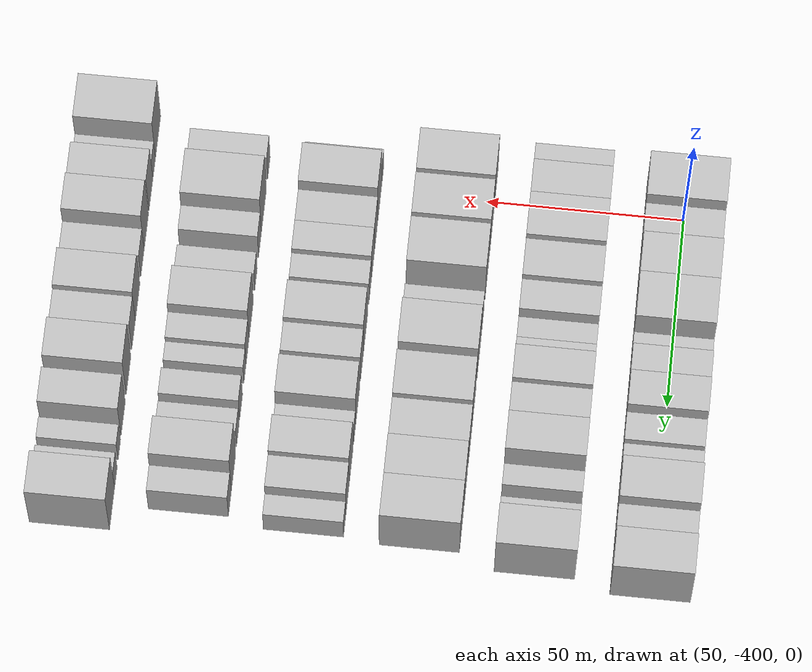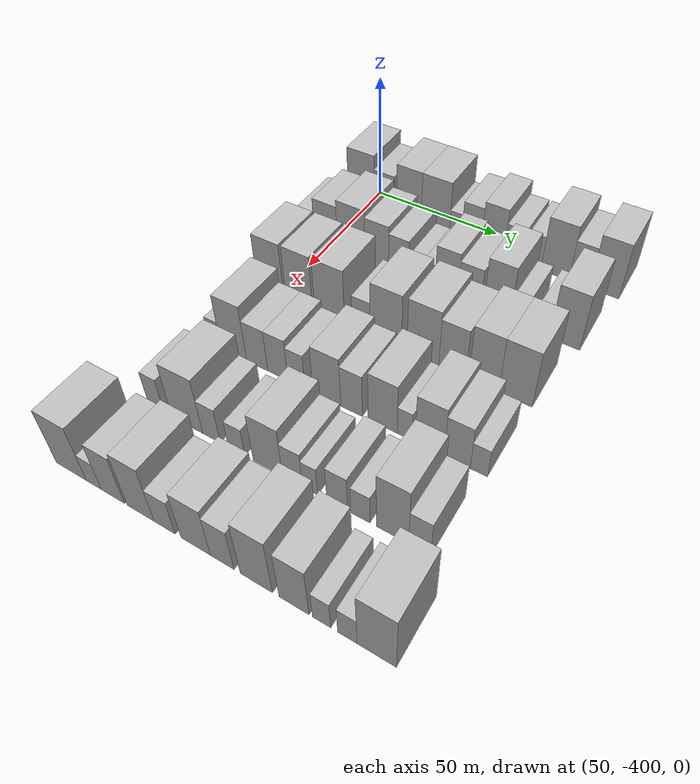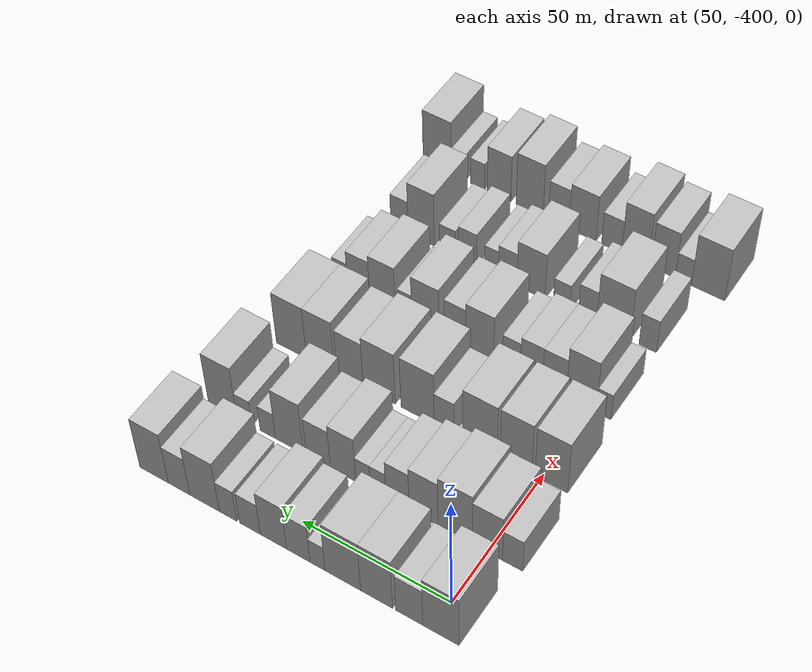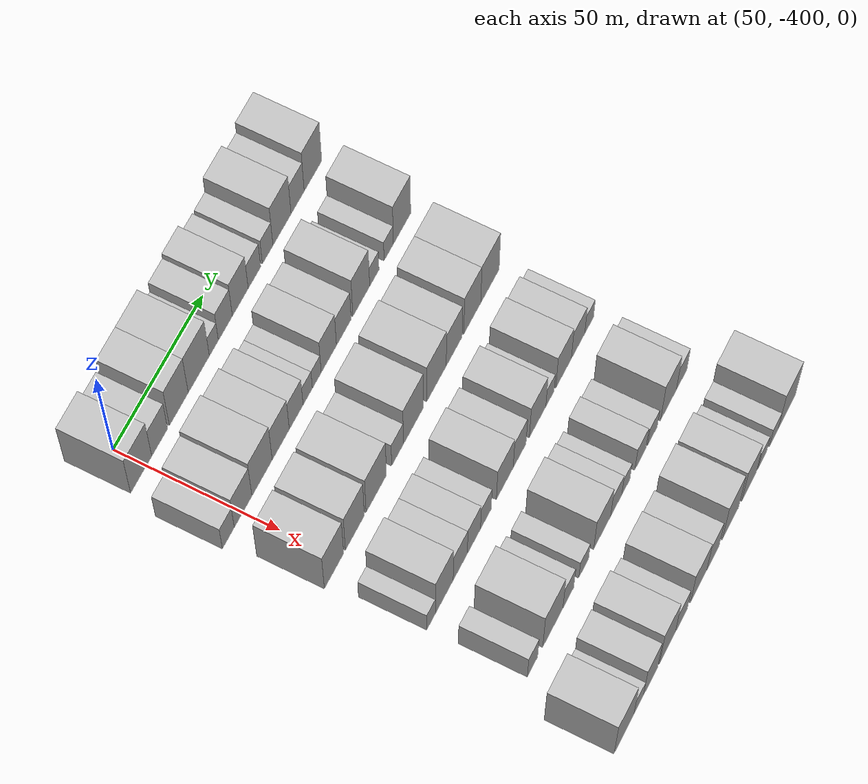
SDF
<sdf version="1.6">
 <world name="default">
  <model name="building_12">
   <static>1</static>
   <pose>50.0000 -402.8266 0 0.000000 0.000000 0.000000</pose>
   <link name="link">
    <pose>0 0 12.00 0 0 0</pose>
    <collision name="collision"><geometry><box><size>20.0000 11.6821 24.0000</size></box></geometry></collision>
    <visual name="visual">
     <cast_shadows>0</cast_shadows>
     <geometry><box><size>20.0000 11.6821 24.0000</size></box></geometry>
     <material>
      <script>
       <uri>model://HANNAS_wall/materials/scripts</uri>
       <uri>model://HANNAS_wall/materials/textures</uri>
       <name>vrc/HANNAS_wall</name>
      </script>
     </material>
    </visual>
   </link>
  </model>
  <model name="building_13">
   <static>1</static>
   <pose>50.0000 -392.5859 0 0.000000 0.000000 0.000000</pose>
   <link name="link">
    <pose>0 0 9.00 0 0 0</pose>
    <collision name="collision"><geometry><box><size>20.0000 8.7992 18.0000</size></box></geometry></collision>
    <visual name="visual">
     <cast_shadows>0</cast_shadows>
     <geometry><box><size>20.0000 8.7992 18.0000</size></box></geometry>
     <material>
      <script>
       <uri>model://HANNAS_wall/materials/scripts</uri>
       <uri>model://HANNAS_wall/materials/textures</uri>
       <name>vrc/HANNAS_wall</name>
      </script>
     </material>
    </visual>
   </link>
  </model>
  <model name="building_14">
   <static>1</static>
   <pose>50.0000 -381.9182 0 0.000000 0.000000 0.000000</pose>
   <link name="link">
    <pose>0 0 12.00 0 0 0</pose>
    <collision name="collision"><geometry><box><size>20.0000 10.5363 24.0000</size></box></geometry></collision>
    <visual name="visual">
     <cast_shadows>0</cast_shadows>
     <geometry><box><size>20.0000 10.5363 24.0000</size></box></geometry>
     <material>
      <script>
       <uri>model://HANNAS_wall/materials/scripts</uri>
       <uri>model://HANNAS_wall/materials/textures</uri>
       <name>vrc/HANNAS_wall</name>
      </script>
     </material>
    </visual>
   </link>
  </model>
  <model name="building_15">
   <static>1</static>
   <pose>50.0000 -370.6933 0 0.000000 0.000000 0.000000</pose>
   <link name="link">
    <pose>0 0 12.00 0 0 0</pose>
    <collision name="collision"><geometry><box><size>20.0000 11.9134 24.0000</size></box></geometry></collision>
    <visual name="visual">
     <cast_shadows>0</cast_shadows>
     <geometry><box><size>20.0000 11.9134 24.0000</size></box></geometry>
     <material>
      <script>
       <uri>model://HANNAS_wall/materials/scripts</uri>
       <uri>model://HANNAS_wall/materials/textures</uri>
       <name>vrc/HANNAS_wall</name>
      </script>
     </material>
    </visual>
   </link>
  </model>
  <model name="building_16">
   <static>1</static>
   <pose>50.0000 -362.1890 0 0.000000 0.000000 0.000000</pose>
   <link name="link">
    <pose>0 0 6.00 0 0 0</pose>
    <collision name="collision"><geometry><box><size>20.0000 5.0953 12.0000</size></box></geometry></collision>
    <visual name="visual">
     <cast_shadows>0</cast_shadows>
     <geometry><box><size>20.0000 5.0953 12.0000</size></box></geometry>
     <material>
      <script>
       <uri>model://HANNAS_wall/materials/scripts</uri>
       <uri>model://HANNAS_wall/materials/textures</uri>
       <name>vrc/HANNAS_wall</name>
      </script>
     </material>
    </visual>
   </link>
  </model>
  <model name="building_17">
   <static>1</static>
   <pose>50.0000 -355.6425 0 0.000000 0.000000 0.000000</pose>
   <link name="link">
    <pose>0 0 9.00 0 0 0</pose>
    <collision name="collision"><geometry><box><size>20.0000 7.9978 18.0000</size></box></geometry></collision>
    <visual name="visual">
     <cast_shadows>0</cast_shadows>
     <geometry><box><size>20.0000 7.9978 18.0000</size></box></geometry>
     <material>
      <script>
       <uri>model://HANNAS_wall/materials/scripts</uri>
       <uri>model://HANNAS_wall/materials/textures</uri>
       <name>vrc/HANNAS_wall</name>
      </script>
     </material>
    </visual>
   </link>
  </model>
  <model name="building_18">
   <static>1</static>
   <pose>50.0000 -347.1063 0 0.000000 0.000000 0.000000</pose>
   <link name="link">
    <pose>0 0 10.50 0 0 0</pose>
    <collision name="collision"><geometry><box><size>20.0000 9.0746 21.0000</size></box></geometry></collision>
    <visual name="visual">
     <cast_shadows>0</cast_shadows>
     <geometry><box><size>20.0000 9.0746 21.0000</size></box></geometry>
     <material>
      <script>
       <uri>model://HANNAS_wall/materials/scripts</uri>
       <uri>model://HANNAS_wall/materials/textures</uri>
       <name>vrc/HANNAS_wall</name>
      </script>
     </material>
    </visual>
   </link>
  </model>
  <model name="building_19">
   <static>1</static>
   <pose>50.0000 -338.9783 0 0.000000 0.000000 0.000000</pose>
   <link name="link">
    <pose>0 0 7.50 0 0 0</pose>
    <collision name="collision"><geometry><box><size>20.0000 7.1814 15.0000</size></box></geometry></collision>
    <visual name="visual">
     <cast_shadows>0</cast_shadows>
     <geometry><box><size>20.0000 7.1814 15.0000</size></box></geometry>
     <material>
      <script>
       <uri>model://HANNAS_wall/materials/scripts</uri>
       <uri>model://HANNAS_wall/materials/textures</uri>
       <name>vrc/HANNAS_wall</name>
      </script>
     </material>
    </visual>
   </link>
  </model>
  <model name="building_20">
   <static>1</static>
   <pose>50.0000 -331.3284 0 0.000000 0.000000 0.000000</pose>
   <link name="link">
    <pose>0 0 7.50 0 0 0</pose>
    <collision name="collision"><geometry><box><size>20.0000 6.1185 15.0000</size></box></geometry></collision>
    <visual name="visual">
     <cast_shadows>0</cast_shadows>
     <geometry><box><size>20.0000 6.1185 15.0000</size></box></geometry>
     <material>
      <script>
       <uri>model://HANNAS_wall/materials/scripts</uri>
       <uri>model://HANNAS_wall/materials/textures</uri>
       <name>vrc/HANNAS_wall</name>
      </script>
     </material>
    </visual>
   </link>
  </model>
  <model name="building_21">
   <static>1</static>
   <pose>50.0000 -322.9980 0 0.000000 0.000000 0.000000</pose>
   <link name="link">
    <pose>0 0 12.00 0 0 0</pose>
    <collision name="collision"><geometry><box><size>20.0000 10.5423 24.0000</size></box></geometry></collision>
    <visual name="visual">
     <cast_shadows>0</cast_shadows>
     <geometry><box><size>20.0000 10.5423 24.0000</size></box></geometry>
     <material>
      <script>
       <uri>model://HANNAS_wall/materials/scripts</uri>
       <uri>model://HANNAS_wall/materials/textures</uri>
       <name>vrc/HANNAS_wall</name>
      </script>
     </material>
    </visual>
   </link>
  </model>
  <model name="building_22">
   <static>1</static>
   <pose>50.0000 -313.8811 0 0.000000 0.000000 0.000000</pose>
   <link name="link">
    <pose>0 0 9.00 0 0 0</pose>
    <collision name="collision"><geometry><box><size>20.0000 7.6914 18.0000</size></box></geometry></collision>
    <visual name="visual">
     <cast_shadows>0</cast_shadows>
     <geometry><box><size>20.0000 7.6914 18.0000</size></box></geometry>
     <material>
      <script>
       <uri>model://HANNAS_wall/materials/scripts</uri>
       <uri>model://HANNAS_wall/materials/textures</uri>
       <name>vrc/HANNAS_wall</name>
      </script>
     </material>
    </visual>
   </link>
  </model>
  <model name="building_23">
   <static>1</static>
   <pose>50.0000 -304.8590 0 0.000000 0.000000 0.000000</pose>
   <link name="link">
    <pose>0 0 12.00 0 0 0</pose>
    <collision name="collision"><geometry><box><size>20.0000 10.3528 24.0000</size></box></geometry></collision>
    <visual name="visual">
     <cast_shadows>0</cast_shadows>
     <geometry><box><size>20.0000 10.3528 24.0000</size></box></geometry>
     <material>
      <script>
       <uri>model://HANNAS_wall/materials/scripts</uri>
       <uri>model://HANNAS_wall/materials/textures</uri>
       <name>vrc/HANNAS_wall</name>
      </script>
     </material>
    </visual>
   </link>
  </model>
  <model name="building_131">
   <static>1</static>
   <pose>79.0000 -408.0820 0 0.000000 0.000000 0.000000</pose>
   <link name="link">
    <pose>0 0 7.50 0 0 0</pose>
    <collision name="collision"><geometry><box><size>20.0000 6.6224 15.0000</size></box></geometry></collision>
    <visual name="visual">
     <cast_shadows>0</cast_shadows>
     <geometry><box><size>20.0000 6.6224 15.0000</size></box></geometry>
     <material>
      <script>
       <uri>model://HANNAS_wall/materials/scripts</uri>
       <uri>model://HANNAS_wall/materials/textures</uri>
       <name>vrc/HANNAS_wall</name>
      </script>
     </material>
    </visual>
   </link>
  </model>
  <model name="building_132">
   <static>1</static>
   <pose>79.0000 -399.8307 0 0.000000 0.000000 0.000000</pose>
   <link name="link">
    <pose>0 0 10.50 0 0 0</pose>
    <collision name="collision"><geometry><box><size>20.0000 9.8802 21.0000</size></box></geometry></collision>
    <visual name="visual">
     <cast_shadows>0</cast_shadows>
     <geometry><box><size>20.0000 9.8802 21.0000</size></box></geometry>
     <material>
      <script>
       <uri>model://HANNAS_wall/materials/scripts</uri>
       <uri>model://HANNAS_wall/materials/textures</uri>
       <name>vrc/HANNAS_wall</name>
      </script>
     </material>
    </visual>
   </link>
  </model>
  <model name="building_133">
   <static>1</static>
   <pose>79.0000 -389.1567 0 0.000000 0.000000 0.000000</pose>
   <link name="link">
    <pose>0 0 12.00 0 0 0</pose>
    <collision name="collision"><geometry><box><size>20.0000 11.4678 24.0000</size></box></geometry></collision>
    <visual name="visual">
     <cast_shadows>0</cast_shadows>
     <geometry><box><size>20.0000 11.4678 24.0000</size></box></geometry>
     <material>
      <script>
       <uri>model://HANNAS_wall/materials/scripts</uri>
       <uri>model://HANNAS_wall/materials/textures</uri>
       <name>vrc/HANNAS_wall</name>
      </script>
     </material>
    </visual>
   </link>
  </model>
  <model name="building_134">
   <static>1</static>
   <pose>79.0000 -378.5693 0 0.000000 0.000000 0.000000</pose>
   <link name="link">
    <pose>0 0 10.50 0 0 0</pose>
    <collision name="collision"><geometry><box><size>20.0000 9.7071 21.0000</size></box></geometry></collision>
    <visual name="visual">
     <cast_shadows>0</cast_shadows>
     <geometry><box><size>20.0000 9.7071 21.0000</size></box></geometry>
     <material>
      <script>
       <uri>model://HANNAS_wall/materials/scripts</uri>
       <uri>model://HANNAS_wall/materials/textures</uri>
       <name>vrc/HANNAS_wall</name>
      </script>
     </material>
    </visual>
   </link>
  </model>
  <model name="building_135">
   <static>1</static>
   <pose>79.0000 -369.7745 0 0.000000 0.000000 0.000000</pose>
   <link name="link">
    <pose>0 0 9.00 0 0 0</pose>
    <collision name="collision"><geometry><box><size>20.0000 7.8825 18.0000</size></box></geometry></collision>
    <visual name="visual">
     <cast_shadows>0</cast_shadows>
     <geometry><box><size>20.0000 7.8825 18.0000</size></box></geometry>
     <material>
      <script>
       <uri>model://HANNAS_wall/materials/scripts</uri>
       <uri>model://HANNAS_wall/materials/textures</uri>
       <name>vrc/HANNAS_wall</name>
      </script>
     </material>
    </visual>
   </link>
  </model>
  <model name="building_136">
   <static>1</static>
   <pose>79.0000 -363.1737 0 0.000000 0.000000 0.000000</pose>
   <link name="link">
    <pose>0 0 6.00 0 0 0</pose>
    <collision name="collision"><geometry><box><size>20.0000 5.3191 12.0000</size></box></geometry></collision>
    <visual name="visual">
     <cast_shadows>0</cast_shadows>
     <geometry><box><size>20.0000 5.3191 12.0000</size></box></geometry>
     <material>
      <script>
       <uri>model://HANNAS_wall/materials/scripts</uri>
       <uri>model://HANNAS_wall/materials/textures</uri>
       <name>vrc/HANNAS_wall</name>
      </script>
     </material>
    </visual>
   </link>
  </model>
  <model name="building_137">
   <static>1</static>
   <pose>79.0000 -357.9667 0 0.000000 0.000000 0.000000</pose>
   <link name="link">
    <pose>0 0 6.00 0 0 0</pose>
    <collision name="collision"><geometry><box><size>20.0000 5.0949 12.0000</size></box></geometry></collision>
    <visual name="visual">
     <cast_shadows>0</cast_shadows>
     <geometry><box><size>20.0000 5.0949 12.0000</size></box></geometry>
     <material>
      <script>
       <uri>model://HANNAS_wall/materials/scripts</uri>
       <uri>model://HANNAS_wall/materials/textures</uri>
       <name>vrc/HANNAS_wall</name>
      </script>
     </material>
    </visual>
   </link>
  </model>
  <model name="building_138">
   <static>1</static>
   <pose>79.0000 -350.9914 0 0.000000 0.000000 0.000000</pose>
   <link name="link">
    <pose>0 0 10.50 0 0 0</pose>
    <collision name="collision"><geometry><box><size>20.0000 8.8556 21.0000</size></box></geometry></collision>
    <visual name="visual">
     <cast_shadows>0</cast_shadows>
     <geometry><box><size>20.0000 8.8556 21.0000</size></box></geometry>
     <material>
      <script>
       <uri>model://HANNAS_wall/materials/scripts</uri>
       <uri>model://HANNAS_wall/materials/textures</uri>
       <name>vrc/HANNAS_wall</name>
      </script>
     </material>
    </visual>
   </link>
  </model>
  <model name="building_139">
   <static>1</static>
   <pose>79.0000 -342.2838 0 0.000000 0.000000 0.000000</pose>
   <link name="link">
    <pose>0 0 9.00 0 0 0</pose>
    <collision name="collision"><geometry><box><size>20.0000 8.5595 18.0000</size></box></geometry></collision>
    <visual name="visual">
     <cast_shadows>0</cast_shadows>
     <geometry><box><size>20.0000 8.5595 18.0000</size></box></geometry>
     <material>
      <script>
       <uri>model://HANNAS_wall/materials/scripts</uri>
       <uri>model://HANNAS_wall/materials/textures</uri>
       <name>vrc/HANNAS_wall</name>
      </script>
     </material>
    </visual>
   </link>
  </model>
  <model name="building_140">
   <static>1</static>
   <pose>79.0000 -332.0629 0 0.000000 0.000000 0.000000</pose>
   <link name="link">
    <pose>0 0 12.00 0 0 0</pose>
    <collision name="collision"><geometry><box><size>20.0000 9.8823 24.0000</size></box></geometry></collision>
    <visual name="visual">
     <cast_shadows>0</cast_shadows>
     <geometry><box><size>20.0000 9.8823 24.0000</size></box></geometry>
     <material>
      <script>
       <uri>model://HANNAS_wall/materials/scripts</uri>
       <uri>model://HANNAS_wall/materials/textures</uri>
       <name>vrc/HANNAS_wall</name>
      </script>
     </material>
    </visual>
   </link>
  </model>
  <model name="building_141">
   <static>1</static>
   <pose>79.0000 -324.3606 0 0.000000 0.000000 0.000000</pose>
   <link name="link">
    <pose>0 0 6.00 0 0 0</pose>
    <collision name="collision"><geometry><box><size>20.0000 5.5224 12.0000</size></box></geometry></collision>
    <visual name="visual">
     <cast_shadows>0</cast_shadows>
     <geometry><box><size>20.0000 5.5224 12.0000</size></box></geometry>
     <material>
      <script>
       <uri>model://HANNAS_wall/materials/scripts</uri>
       <uri>model://HANNAS_wall/materials/textures</uri>
       <name>vrc/HANNAS_wall</name>
      </script>
     </material>
    </visual>
   </link>
  </model>
  <model name="building_142">
   <static>1</static>
   <pose>79.0000 -315.8337 0 0.000000 0.000000 0.000000</pose>
   <link name="link">
    <pose>0 0 6.00 0 0 0</pose>
    <collision name="collision"><geometry><box><size>20.0000 5.5313 12.0000</size></box></geometry></collision>
    <visual name="visual">
     <cast_shadows>0</cast_shadows>
     <geometry><box><size>20.0000 5.5313 12.0000</size></box></geometry>
     <material>
      <script>
       <uri>model://HANNAS_wall/materials/scripts</uri>
       <uri>model://HANNAS_wall/materials/textures</uri>
       <name>vrc/HANNAS_wall</name>
      </script>
     </material>
    </visual>
   </link>
  </model>
  <model name="building_143">
   <static>1</static>
   <pose>79.0000 -307.8991 0 0.000000 0.000000 0.000000</pose>
   <link name="link">
    <pose>0 0 12.00 0 0 0</pose>
    <collision name="collision"><geometry><box><size>20.0000 10.3379 24.0000</size></box></geometry></collision>
    <visual name="visual">
     <cast_shadows>0</cast_shadows>
     <geometry><box><size>20.0000 10.3379 24.0000</size></box></geometry>
     <material>
      <script>
       <uri>model://HANNAS_wall/materials/scripts</uri>
       <uri>model://HANNAS_wall/materials/textures</uri>
       <name>vrc/HANNAS_wall</name>
      </script>
     </material>
    </visual>
   </link>
  </model>
  <model name="building_248">
   <static>1</static>
   <pose>108.0000 -403.5862 0 0.000000 0.000000 0.000000</pose>
   <link name="link">
    <pose>0 0 12.00 0 0 0</pose>
    <collision name="collision"><geometry><box><size>20.0000 10.9445 24.0000</size></box></geometry></collision>
    <visual name="visual">
     <cast_shadows>0</cast_shadows>
     <geometry><box><size>20.0000 10.9445 24.0000</size></box></geometry>
     <material>
      <script>
       <uri>model://HANNAS_wall/materials/scripts</uri>
       <uri>model://HANNAS_wall/materials/textures</uri>
       <name>vrc/HANNAS_wall</name>
      </script>
     </material>
    </visual>
   </link>
  </model>
  <model name="building_249">
   <static>1</static>
   <pose>108.0000 -391.7065 0 0.000000 0.000000 0.000000</pose>
   <link name="link">
    <pose>0 0 12.00 0 0 0</pose>
    <collision name="collision"><geometry><box><size>20.0000 10.8149 24.0000</size></box></geometry></collision>
    <visual name="visual">
     <cast_shadows>0</cast_shadows>
     <geometry><box><size>20.0000 10.8149 24.0000</size></box></geometry>
     <material>
      <script>
       <uri>model://HANNAS_wall/materials/scripts</uri>
       <uri>model://HANNAS_wall/materials/textures</uri>
       <name>vrc/HANNAS_wall</name>
      </script>
     </material>
    </visual>
   </link>
  </model>
  <model name="building_250">
   <static>1</static>
   <pose>108.0000 -379.4249 0 0.000000 0.000000 0.000000</pose>
   <link name="link">
    <pose>0 0 12.00 0 0 0</pose>
    <collision name="collision"><geometry><box><size>20.0000 11.7484 24.0000</size></box></geometry></collision>
    <visual name="visual">
     <cast_shadows>0</cast_shadows>
     <geometry><box><size>20.0000 11.7484 24.0000</size></box></geometry>
     <material>
      <script>
       <uri>model://HANNAS_wall/materials/scripts</uri>
       <uri>model://HANNAS_wall/materials/textures</uri>
       <name>vrc/HANNAS_wall</name>
      </script>
     </material>
    </visual>
   </link>
  </model>
  <model name="building_251">
   <static>1</static>
   <pose>108.0000 -367.1018 0 0.000000 0.000000 0.000000</pose>
   <link name="link">
    <pose>0 0 7.50 0 0 0</pose>
    <collision name="collision"><geometry><box><size>20.0000 6.8978 15.0000</size></box></geometry></collision>
    <visual name="visual">
     <cast_shadows>0</cast_shadows>
     <geometry><box><size>20.0000 6.8978 15.0000</size></box></geometry>
     <material>
      <script>
       <uri>model://HANNAS_wall/materials/scripts</uri>
       <uri>model://HANNAS_wall/materials/textures</uri>
       <name>vrc/HANNAS_wall</name>
      </script>
     </material>
    </visual>
   </link>
  </model>
  <model name="building_252">
   <static>1</static>
   <pose>108.0000 -357.8293 0 0.000000 0.000000 0.000000</pose>
   <link name="link">
    <pose>0 0 12.00 0 0 0</pose>
    <collision name="collision"><geometry><box><size>20.0000 11.6472 24.0000</size></box></geometry></collision>
    <visual name="visual">
     <cast_shadows>0</cast_shadows>
     <geometry><box><size>20.0000 11.6472 24.0000</size></box></geometry>
     <material>
      <script>
       <uri>model://HANNAS_wall/materials/scripts</uri>
       <uri>model://HANNAS_wall/materials/textures</uri>
       <name>vrc/HANNAS_wall</name>
      </script>
     </material>
    </visual>
   </link>
  </model>
  <model name="building_253">
   <static>1</static>
   <pose>108.0000 -344.2623 0 0.000000 0.000000 0.000000</pose>
   <link name="link">
    <pose>0 0 12.00 0 0 0</pose>
    <collision name="collision"><geometry><box><size>20.0000 11.4868 24.0000</size></box></geometry></collision>
    <visual name="visual">
     <cast_shadows>0</cast_shadows>
     <geometry><box><size>20.0000 11.4868 24.0000</size></box></geometry>
     <material>
      <script>
       <uri>model://HANNAS_wall/materials/scripts</uri>
       <uri>model://HANNAS_wall/materials/textures</uri>
       <name>vrc/HANNAS_wall</name>
      </script>
     </material>
    </visual>
   </link>
  </model>
  <model name="building_254">
   <static>1</static>
   <pose>108.0000 -333.7825 0 0.000000 0.000000 0.000000</pose>
   <link name="link">
    <pose>0 0 10.50 0 0 0</pose>
    <collision name="collision"><geometry><box><size>20.0000 9.4729 21.0000</size></box></geometry></collision>
    <visual name="visual">
     <cast_shadows>0</cast_shadows>
     <geometry><box><size>20.0000 9.4729 21.0000</size></box></geometry>
     <material>
      <script>
       <uri>model://HANNAS_wall/materials/scripts</uri>
       <uri>model://HANNAS_wall/materials/textures</uri>
       <name>vrc/HANNAS_wall</name>
      </script>
     </material>
    </visual>
   </link>
  </model>
  <model name="building_255">
   <static>1</static>
   <pose>108.0000 -322.9569 0 0.000000 0.000000 0.000000</pose>
   <link name="link">
    <pose>0 0 12.00 0 0 0</pose>
    <collision name="collision"><geometry><box><size>20.0000 10.1784 24.0000</size></box></geometry></collision>
    <visual name="visual">
     <cast_shadows>0</cast_shadows>
     <geometry><box><size>20.0000 10.1784 24.0000</size></box></geometry>
     <material>
      <script>
       <uri>model://HANNAS_wall/materials/scripts</uri>
       <uri>model://HANNAS_wall/materials/textures</uri>
       <name>vrc/HANNAS_wall</name>
      </script>
     </material>
    </visual>
   </link>
  </model>
  <model name="building_256">
   <static>1</static>
   <pose>108.0000 -312.3103 0 0.000000 0.000000 0.000000</pose>
   <link name="link">
    <pose>0 0 12.00 0 0 0</pose>
    <collision name="collision"><geometry><box><size>20.0000 11.1149 24.0000</size></box></geometry></collision>
    <visual name="visual">
     <cast_shadows>0</cast_shadows>
     <geometry><box><size>20.0000 11.1149 24.0000</size></box></geometry>
     <material>
      <script>
       <uri>model://HANNAS_wall/materials/scripts</uri>
       <uri>model://HANNAS_wall/materials/textures</uri>
       <name>vrc/HANNAS_wall</name>
      </script>
     </material>
    </visual>
   </link>
  </model>
  <model name="building_361">
   <static>1</static>
   <pose>137.0000 -404.5205 0 0.000000 0.000000 0.000000</pose>
   <link name="link">
    <pose>0 0 6.00 0 0 0</pose>
    <collision name="collision"><geometry><box><size>20.0000 4.9355 12.0000</size></box></geometry></collision>
    <visual name="visual">
     <cast_shadows>0</cast_shadows>
     <geometry><box><size>20.0000 4.9355 12.0000</size></box></geometry>
     <material>
      <script>
       <uri>model://HANNAS_wall/materials/scripts</uri>
       <uri>model://HANNAS_wall/materials/textures</uri>
       <name>vrc/HANNAS_wall</name>
      </script>
     </material>
    </visual>
   </link>
  </model>
  <model name="building_362">
   <static>1</static>
   <pose>137.0000 -396.9071 0 0.000000 0.000000 0.000000</pose>
   <link name="link">
    <pose>0 0 12.00 0 0 0</pose>
    <collision name="collision"><geometry><box><size>20.0000 10.2913 24.0000</size></box></geometry></collision>
    <visual name="visual">
     <cast_shadows>0</cast_shadows>
     <geometry><box><size>20.0000 10.2913 24.0000</size></box></geometry>
     <material>
      <script>
       <uri>model://HANNAS_wall/materials/scripts</uri>
       <uri>model://HANNAS_wall/materials/textures</uri>
       <name>vrc/HANNAS_wall</name>
      </script>
     </material>
    </visual>
   </link>
  </model>
  <model name="building_363">
   <static>1</static>
   <pose>137.0000 -387.6380 0 0.000000 0.000000 0.000000</pose>
   <link name="link">
    <pose>0 0 9.00 0 0 0</pose>
    <collision name="collision"><geometry><box><size>20.0000 8.2469 18.0000</size></box></geometry></collision>
    <visual name="visual">
     <cast_shadows>0</cast_shadows>
     <geometry><box><size>20.0000 8.2469 18.0000</size></box></geometry>
     <material>
      <script>
       <uri>model://HANNAS_wall/materials/scripts</uri>
       <uri>model://HANNAS_wall/materials/textures</uri>
       <name>vrc/HANNAS_wall</name>
      </script>
     </material>
    </visual>
   </link>
  </model>
  <model name="building_364">
   <static>1</static>
   <pose>137.0000 -379.6651 0 0.000000 0.000000 0.000000</pose>
   <link name="link">
    <pose>0 0 9.00 0 0 0</pose>
    <collision name="collision"><geometry><box><size>20.0000 7.6991 18.0000</size></box></geometry></collision>
    <visual name="visual">
     <cast_shadows>0</cast_shadows>
     <geometry><box><size>20.0000 7.6991 18.0000</size></box></geometry>
     <material>
      <script>
       <uri>model://HANNAS_wall/materials/scripts</uri>
       <uri>model://HANNAS_wall/materials/textures</uri>
       <name>vrc/HANNAS_wall</name>
      </script>
     </material>
    </visual>
   </link>
  </model>
  <model name="building_365">
   <static>1</static>
   <pose>137.0000 -372.6379 0 0.000000 0.000000 0.000000</pose>
   <link name="link">
    <pose>0 0 7.50 0 0 0</pose>
    <collision name="collision"><geometry><box><size>20.0000 6.3553 15.0000</size></box></geometry></collision>
    <visual name="visual">
     <cast_shadows>0</cast_shadows>
     <geometry><box><size>20.0000 6.3553 15.0000</size></box></geometry>
     <material>
      <script>
       <uri>model://HANNAS_wall/materials/scripts</uri>
       <uri>model://HANNAS_wall/materials/textures</uri>
       <name>vrc/HANNAS_wall</name>
      </script>
     </material>
    </visual>
   </link>
  </model>
  <model name="building_366">
   <static>1</static>
   <pose>137.0000 -361.4677 0 0.000000 0.000000 0.000000</pose>
   <link name="link">
    <pose>0 0 10.50 0 0 0</pose>
    <collision name="collision"><geometry><box><size>20.0000 9.9851 21.0000</size></box></geometry></collision>
    <visual name="visual">
     <cast_shadows>0</cast_shadows>
     <geometry><box><size>20.0000 9.9851 21.0000</size></box></geometry>
     <material>
      <script>
       <uri>model://HANNAS_wall/materials/scripts</uri>
       <uri>model://HANNAS_wall/materials/textures</uri>
       <name>vrc/HANNAS_wall</name>
      </script>
     </material>
    </visual>
   </link>
  </model>
  <model name="building_367">
   <static>1</static>
   <pose>137.0000 -352.6650 0 0.000000 0.000000 0.000000</pose>
   <link name="link">
    <pose>0 0 9.00 0 0 0</pose>
    <collision name="collision"><geometry><box><size>20.0000 7.6202 18.0000</size></box></geometry></collision>
    <visual name="visual">
     <cast_shadows>0</cast_shadows>
     <geometry><box><size>20.0000 7.6202 18.0000</size></box></geometry>
     <material>
      <script>
       <uri>model://HANNAS_wall/materials/scripts</uri>
       <uri>model://HANNAS_wall/materials/textures</uri>
       <name>vrc/HANNAS_wall</name>
      </script>
     </material>
    </visual>
   </link>
  </model>
  <model name="building_368">
   <static>1</static>
   <pose>137.0000 -341.9080 0 0.000000 0.000000 0.000000</pose>
   <link name="link">
    <pose>0 0 10.50 0 0 0</pose>
    <collision name="collision"><geometry><box><size>20.0000 9.8939 21.0000</size></box></geometry></collision>
    <visual name="visual">
     <cast_shadows>0</cast_shadows>
     <geometry><box><size>20.0000 9.8939 21.0000</size></box></geometry>
     <material>
      <script>
       <uri>model://HANNAS_wall/materials/scripts</uri>
       <uri>model://HANNAS_wall/materials/textures</uri>
       <name>vrc/HANNAS_wall</name>
      </script>
     </material>
    </visual>
   </link>
  </model>
  <model name="building_369">
   <static>1</static>
   <pose>137.0000 -334.4641 0 0.000000 0.000000 0.000000</pose>
   <link name="link">
    <pose>0 0 6.00 0 0 0</pose>
    <collision name="collision"><geometry><box><size>20.0000 4.9940 12.0000</size></box></geometry></collision>
    <visual name="visual">
     <cast_shadows>0</cast_shadows>
     <geometry><box><size>20.0000 4.9940 12.0000</size></box></geometry>
     <material>
      <script>
       <uri>model://HANNAS_wall/materials/scripts</uri>
       <uri>model://HANNAS_wall/materials/textures</uri>
       <name>vrc/HANNAS_wall</name>
      </script>
     </material>
    </visual>
   </link>
  </model>
  <model name="building_370">
   <static>1</static>
   <pose>137.0000 -326.2289 0 0.000000 0.000000 0.000000</pose>
   <link name="link">
    <pose>0 0 10.50 0 0 0</pose>
    <collision name="collision"><geometry><box><size>20.0000 9.4764 21.0000</size></box></geometry></collision>
    <visual name="visual">
     <cast_shadows>0</cast_shadows>
     <geometry><box><size>20.0000 9.4764 21.0000</size></box></geometry>
     <material>
      <script>
       <uri>model://HANNAS_wall/materials/scripts</uri>
       <uri>model://HANNAS_wall/materials/textures</uri>
       <name>vrc/HANNAS_wall</name>
      </script>
     </material>
    </visual>
   </link>
  </model>
  <model name="building_371">
   <static>1</static>
   <pose>137.0000 -317.3724 0 0.000000 0.000000 0.000000</pose>
   <link name="link">
    <pose>0 0 9.00 0 0 0</pose>
    <collision name="collision"><geometry><box><size>20.0000 8.2365 18.0000</size></box></geometry></collision>
    <visual name="visual">
     <cast_shadows>0</cast_shadows>
     <geometry><box><size>20.0000 8.2365 18.0000</size></box></geometry>
     <material>
      <script>
       <uri>model://HANNAS_wall/materials/scripts</uri>
       <uri>model://HANNAS_wall/materials/textures</uri>
       <name>vrc/HANNAS_wall</name>
      </script>
     </material>
    </visual>
   </link>
  </model>
  <model name="building_372">
   <static>1</static>
   <pose>137.0000 -310.5528 0 0.000000 0.000000 0.000000</pose>
   <link name="link">
    <pose>0 0 6.00 0 0 0</pose>
    <collision name="collision"><geometry><box><size>20.0000 5.4026 12.0000</size></box></geometry></collision>
    <visual name="visual">
     <cast_shadows>0</cast_shadows>
     <geometry><box><size>20.0000 5.4026 12.0000</size></box></geometry>
     <material>
      <script>
       <uri>model://HANNAS_wall/materials/scripts</uri>
       <uri>model://HANNAS_wall/materials/textures</uri>
       <name>vrc/HANNAS_wall</name>
      </script>
     </material>
    </visual>
   </link>
  </model>
  <model name="building_477">
   <static>1</static>
   <pose>166.0000 -403.5346 0 0.000000 0.000000 0.000000</pose>
   <link name="link">
    <pose>0 0 7.50 0 0 0</pose>
    <collision name="collision"><geometry><box><size>20.0000 6.0214 15.0000</size></box></geometry></collision>
    <visual name="visual">
     <cast_shadows>0</cast_shadows>
     <geometry><box><size>20.0000 6.0214 15.0000</size></box></geometry>
     <material>
      <script>
       <uri>model://HANNAS_wall/materials/scripts</uri>
       <uri>model://HANNAS_wall/materials/textures</uri>
       <name>vrc/HANNAS_wall</name>
      </script>
     </material>
    </visual>
   </link>
  </model>
  <model name="building_478">
   <static>1</static>
   <pose>166.0000 -391.6146 0 0.000000 0.000000 0.000000</pose>
   <link name="link">
    <pose>0 0 12.00 0 0 0</pose>
    <collision name="collision"><geometry><box><size>20.0000 11.8186 24.0000</size></box></geometry></collision>
    <visual name="visual">
     <cast_shadows>0</cast_shadows>
     <geometry><box><size>20.0000 11.8186 24.0000</size></box></geometry>
     <material>
      <script>
       <uri>model://HANNAS_wall/materials/scripts</uri>
       <uri>model://HANNAS_wall/materials/textures</uri>
       <name>vrc/HANNAS_wall</name>
      </script>
     </material>
    </visual>
   </link>
  </model>
  <model name="building_479">
   <static>1</static>
   <pose>166.0000 -382.4701 0 0.000000 0.000000 0.000000</pose>
   <link name="link">
    <pose>0 0 7.50 0 0 0</pose>
    <collision name="collision"><geometry><box><size>20.0000 6.4705 15.0000</size></box></geometry></collision>
    <visual name="visual">
     <cast_shadows>0</cast_shadows>
     <geometry><box><size>20.0000 6.4705 15.0000</size></box></geometry>
     <material>
      <script>
       <uri>model://HANNAS_wall/materials/scripts</uri>
       <uri>model://HANNAS_wall/materials/textures</uri>
       <name>vrc/HANNAS_wall</name>
      </script>
     </material>
    </visual>
   </link>
  </model>
  <model name="building_480">
   <static>1</static>
   <pose>166.0000 -373.2896 0 0.000000 0.000000 0.000000</pose>
   <link name="link">
    <pose>0 0 6.00 0 0 0</pose>
    <collision name="collision"><geometry><box><size>20.0000 5.8904 12.0000</size></box></geometry></collision>
    <visual name="visual">
     <cast_shadows>0</cast_shadows>
     <geometry><box><size>20.0000 5.8904 12.0000</size></box></geometry>
     <material>
      <script>
       <uri>model://HANNAS_wall/materials/scripts</uri>
       <uri>model://HANNAS_wall/materials/textures</uri>
       <name>vrc/HANNAS_wall</name>
      </script>
     </material>
    </visual>
   </link>
  </model>
  <model name="building_481">
   <static>1</static>
   <pose>166.0000 -362.2506 0 0.000000 0.000000 0.000000</pose>
   <link name="link">
    <pose>0 0 10.50 0 0 0</pose>
    <collision name="collision"><geometry><box><size>20.0000 10.1878 21.0000</size></box></geometry></collision>
    <visual name="visual">
     <cast_shadows>0</cast_shadows>
     <geometry><box><size>20.0000 10.1878 21.0000</size></box></geometry>
     <material>
      <script>
       <uri>model://HANNAS_wall/materials/scripts</uri>
       <uri>model://HANNAS_wall/materials/textures</uri>
       <name>vrc/HANNAS_wall</name>
      </script>
     </material>
    </visual>
   </link>
  </model>
  <model name="building_482">
   <static>1</static>
   <pose>166.0000 -353.7833 0 0.000000 0.000000 0.000000</pose>
   <link name="link">
    <pose>0 0 7.50 0 0 0</pose>
    <collision name="collision"><geometry><box><size>20.0000 6.7468 15.0000</size></box></geometry></collision>
    <visual name="visual">
     <cast_shadows>0</cast_shadows>
     <geometry><box><size>20.0000 6.7468 15.0000</size></box></geometry>
     <material>
      <script>
       <uri>model://HANNAS_wall/materials/scripts</uri>
       <uri>model://HANNAS_wall/materials/textures</uri>
       <name>vrc/HANNAS_wall</name>
      </script>
     </material>
    </visual>
   </link>
  </model>
  <model name="building_483">
   <static>1</static>
   <pose>166.0000 -347.9036 0 0.000000 0.000000 0.000000</pose>
   <link name="link">
    <pose>0 0 6.00 0 0 0</pose>
    <collision name="collision"><geometry><box><size>20.0000 5.0126 12.0000</size></box></geometry></collision>
    <visual name="visual">
     <cast_shadows>0</cast_shadows>
     <geometry><box><size>20.0000 5.0126 12.0000</size></box></geometry>
     <material>
      <script>
       <uri>model://HANNAS_wall/materials/scripts</uri>
       <uri>model://HANNAS_wall/materials/textures</uri>
       <name>vrc/HANNAS_wall</name>
      </script>
     </material>
    </visual>
   </link>
  </model>
  <model name="building_484">
   <static>1</static>
   <pose>166.0000 -339.0210 0 0.000000 0.000000 0.000000</pose>
   <link name="link">
    <pose>0 0 7.50 0 0 0</pose>
    <collision name="collision"><geometry><box><size>20.0000 6.7527 15.0000</size></box></geometry></collision>
    <visual name="visual">
     <cast_shadows>0</cast_shadows>
     <geometry><box><size>20.0000 6.7527 15.0000</size></box></geometry>
     <material>
      <script>
       <uri>model://HANNAS_wall/materials/scripts</uri>
       <uri>model://HANNAS_wall/materials/textures</uri>
       <name>vrc/HANNAS_wall</name>
      </script>
     </material>
    </visual>
   </link>
  </model>
  <model name="building_485">
   <static>1</static>
   <pose>166.0000 -331.6618 0 0.000000 0.000000 0.000000</pose>
   <link name="link">
    <pose>0 0 6.00 0 0 0</pose>
    <collision name="collision"><geometry><box><size>20.0000 5.9657 12.0000</size></box></geometry></collision>
    <visual name="visual">
     <cast_shadows>0</cast_shadows>
     <geometry><box><size>20.0000 5.9657 12.0000</size></box></geometry>
     <material>
      <script>
       <uri>model://HANNAS_wall/materials/scripts</uri>
       <uri>model://HANNAS_wall/materials/textures</uri>
       <name>vrc/HANNAS_wall</name>
      </script>
     </material>
    </visual>
   </link>
  </model>
  <model name="building_486">
   <static>1</static>
   <pose>166.0000 -321.7618 0 0.000000 0.000000 0.000000</pose>
   <link name="link">
    <pose>0 0 12.00 0 0 0</pose>
    <collision name="collision"><geometry><box><size>20.0000 9.8343 24.0000</size></box></geometry></collision>
    <visual name="visual">
     <cast_shadows>0</cast_shadows>
     <geometry><box><size>20.0000 9.8343 24.0000</size></box></geometry>
     <material>
      <script>
       <uri>model://HANNAS_wall/materials/scripts</uri>
       <uri>model://HANNAS_wall/materials/textures</uri>
       <name>vrc/HANNAS_wall</name>
      </script>
     </material>
    </visual>
   </link>
  </model>
  <model name="building_487">
   <static>1</static>
   <pose>166.0000 -313.5489 0 0.000000 0.000000 0.000000</pose>
   <link name="link">
    <pose>0 0 7.50 0 0 0</pose>
    <collision name="collision"><geometry><box><size>20.0000 6.5915 15.0000</size></box></geometry></collision>
    <visual name="visual">
     <cast_shadows>0</cast_shadows>
     <geometry><box><size>20.0000 6.5915 15.0000</size></box></geometry>
     <material>
      <script>
       <uri>model://HANNAS_wall/materials/scripts</uri>
       <uri>model://HANNAS_wall/materials/textures</uri>
       <name>vrc/HANNAS_wall</name>
      </script>
     </material>
    </visual>
   </link>
  </model>
  <model name="building_589">
   <static>1</static>
   <pose>195.0000 -409.0598 0 0.000000 0.000000 0.000000</pose>
   <link name="link">
    <pose>0 0 12.00 0 0 0</pose>
    <collision name="collision"><geometry><box><size>20.0000 11.6703 24.0000</size></box></geometry></collision>
    <visual name="visual">
     <cast_shadows>0</cast_shadows>
     <geometry><box><size>20.0000 11.6703 24.0000</size></box></geometry>
     <material>
      <script>
       <uri>model://HANNAS_wall/materials/scripts</uri>
       <uri>model://HANNAS_wall/materials/textures</uri>
       <name>vrc/HANNAS_wall</name>
      </script>
     </material>
    </visual>
   </link>
  </model>
  <model name="building_590">
   <static>1</static>
   <pose>195.0000 -400.3902 0 0.000000 0.000000 0.000000</pose>
   <link name="link">
    <pose>0 0 6.00 0 0 0</pose>
    <collision name="collision"><geometry><box><size>20.0000 5.6690 12.0000</size></box></geometry></collision>
    <visual name="visual">
     <cast_shadows>0</cast_shadows>
     <geometry><box><size>20.0000 5.6690 12.0000</size></box></geometry>
     <material>
      <script>
       <uri>model://HANNAS_wall/materials/scripts</uri>
       <uri>model://HANNAS_wall/materials/textures</uri>
       <name>vrc/HANNAS_wall</name>
      </script>
     </material>
    </visual>
   </link>
  </model>
  <model name="building_591">
   <static>1</static>
   <pose>195.0000 -393.2866 0 0.000000 0.000000 0.000000</pose>
   <link name="link">
    <pose>0 0 10.50 0 0 0</pose>
    <collision name="collision"><geometry><box><size>20.0000 8.5380 21.0000</size></box></geometry></collision>
    <visual name="visual">
     <cast_shadows>0</cast_shadows>
     <geometry><box><size>20.0000 8.5380 21.0000</size></box></geometry>
     <material>
      <script>
       <uri>model://HANNAS_wall/materials/scripts</uri>
       <uri>model://HANNAS_wall/materials/textures</uri>
       <name>vrc/HANNAS_wall</name>
      </script>
     </material>
    </visual>
   </link>
  </model>
  <model name="building_592">
   <static>1</static>
   <pose>195.0000 -383.2126 0 0.000000 0.000000 0.000000</pose>
   <link name="link">
    <pose>0 0 12.00 0 0 0</pose>
    <collision name="collision"><geometry><box><size>20.0000 9.6100 24.0000</size></box></geometry></collision>
    <visual name="visual">
     <cast_shadows>0</cast_shadows>
     <geometry><box><size>20.0000 9.6100 24.0000</size></box></geometry>
     <material>
      <script>
       <uri>model://HANNAS_wall/materials/scripts</uri>
       <uri>model://HANNAS_wall/materials/textures</uri>
       <name>vrc/HANNAS_wall</name>
      </script>
     </material>
    </visual>
   </link>
  </model>
  <model name="building_593">
   <static>1</static>
   <pose>195.0000 -374.7612 0 0.000000 0.000000 0.000000</pose>
   <link name="link">
    <pose>0 0 7.50 0 0 0</pose>
    <collision name="collision"><geometry><box><size>20.0000 7.2929 15.0000</size></box></geometry></collision>
    <visual name="visual">
     <cast_shadows>0</cast_shadows>
     <geometry><box><size>20.0000 7.2929 15.0000</size></box></geometry>
     <material>
      <script>
       <uri>model://HANNAS_wall/materials/scripts</uri>
       <uri>model://HANNAS_wall/materials/textures</uri>
       <name>vrc/HANNAS_wall</name>
      </script>
     </material>
    </visual>
   </link>
  </model>
  <model name="building_594">
   <static>1</static>
   <pose>195.0000 -364.1691 0 0.000000 0.000000 0.000000</pose>
   <link name="link">
    <pose>0 0 10.50 0 0 0</pose>
    <collision name="collision"><geometry><box><size>20.0000 9.8912 21.0000</size></box></geometry></collision>
    <visual name="visual">
     <cast_shadows>0</cast_shadows>
     <geometry><box><size>20.0000 9.8912 21.0000</size></box></geometry>
     <material>
      <script>
       <uri>model://HANNAS_wall/materials/scripts</uri>
       <uri>model://HANNAS_wall/materials/textures</uri>
       <name>vrc/HANNAS_wall</name>
      </script>
     </material>
    </visual>
   </link>
  </model>
  <model name="building_595">
   <static>1</static>
   <pose>195.0000 -355.4138 0 0.000000 0.000000 0.000000</pose>
   <link name="link">
    <pose>0 0 9.00 0 0 0</pose>
    <collision name="collision"><geometry><box><size>20.0000 7.6193 18.0000</size></box></geometry></collision>
    <visual name="visual">
     <cast_shadows>0</cast_shadows>
     <geometry><box><size>20.0000 7.6193 18.0000</size></box></geometry>
     <material>
      <script>
       <uri>model://HANNAS_wall/materials/scripts</uri>
       <uri>model://HANNAS_wall/materials/textures</uri>
       <name>vrc/HANNAS_wall</name>
      </script>
     </material>
    </visual>
   </link>
  </model>
  <model name="building_596">
   <static>1</static>
   <pose>195.0000 -344.5663 0 0.000000 0.000000 0.000000</pose>
   <link name="link">
    <pose>0 0 12.00 0 0 0</pose>
    <collision name="collision"><geometry><box><size>20.0000 10.0758 24.0000</size></box></geometry></collision>
    <visual name="visual">
     <cast_shadows>0</cast_shadows>
     <geometry><box><size>20.0000 10.0758 24.0000</size></box></geometry>
     <material>
      <script>
       <uri>model://HANNAS_wall/materials/scripts</uri>
       <uri>model://HANNAS_wall/materials/textures</uri>
       <name>vrc/HANNAS_wall</name>
      </script>
     </material>
    </visual>
   </link>
  </model>
  <model name="building_597">
   <static>1</static>
   <pose>195.0000 -333.0203 0 0.000000 0.000000 0.000000</pose>
   <link name="link">
    <pose>0 0 10.50 0 0 0</pose>
    <collision name="collision"><geometry><box><size>20.0000 9.0160 21.0000</size></box></geometry></collision>
    <visual name="visual">
     <cast_shadows>0</cast_shadows>
     <geometry><box><size>20.0000 9.0160 21.0000</size></box></geometry>
     <material>
      <script>
       <uri>model://HANNAS_wall/materials/scripts</uri>
       <uri>model://HANNAS_wall/materials/textures</uri>
       <name>vrc/HANNAS_wall</name>
      </script>
     </material>
    </visual>
   </link>
  </model>
  <model name="building_598">
   <static>1</static>
   <pose>195.0000 -324.8478 0 0.000000 0.000000 0.000000</pose>
   <link name="link">
    <pose>0 0 6.00 0 0 0</pose>
    <collision name="collision"><geometry><box><size>20.0000 5.3291 12.0000</size></box></geometry></collision>
    <visual name="visual">
     <cast_shadows>0</cast_shadows>
     <geometry><box><size>20.0000 5.3291 12.0000</size></box></geometry>
     <material>
      <script>
       <uri>model://HANNAS_wall/materials/scripts</uri>
       <uri>model://HANNAS_wall/materials/textures</uri>
       <name>vrc/HANNAS_wall</name>
      </script>
     </material>
    </visual>
   </link>
  </model>
  <model name="building_599">
   <static>1</static>
   <pose>195.0000 -317.4521 0 0.000000 0.000000 0.000000</pose>
   <link name="link">
    <pose>0 0 6.00 0 0 0</pose>
    <collision name="collision"><geometry><box><size>20.0000 5.4622 12.0000</size></box></geometry></collision>
    <visual name="visual">
     <cast_shadows>0</cast_shadows>
     <geometry><box><size>20.0000 5.4622 12.0000</size></box></geometry>
     <material>
      <script>
       <uri>model://HANNAS_wall/materials/scripts</uri>
       <uri>model://HANNAS_wall/materials/textures</uri>
       <name>vrc/HANNAS_wall</name>
      </script>
     </material>
    </visual>
   </link>
  </model>
  <model name="building_600">
   <static>1</static>
   <pose>195.0000 -309.2975 0 0.000000 0.000000 0.000000</pose>
   <link name="link">
    <pose>0 0 12.00 0 0 0</pose>
    <collision name="collision"><geometry><box><size>20.0000 10.8471 24.0000</size></box></geometry></collision>
    <visual name="visual">
     <cast_shadows>0</cast_shadows>
     <geometry><box><size>20.0000 10.8471 24.0000</size></box></geometry>
     <material>
      <script>
       <uri>model://HANNAS_wall/materials/scripts</uri>
       <uri>model://HANNAS_wall/materials/textures</uri>
       <name>vrc/HANNAS_wall</name>
      </script>
     </material>
    </visual>
   </link>
  </model>
 </world>
</sdf>
